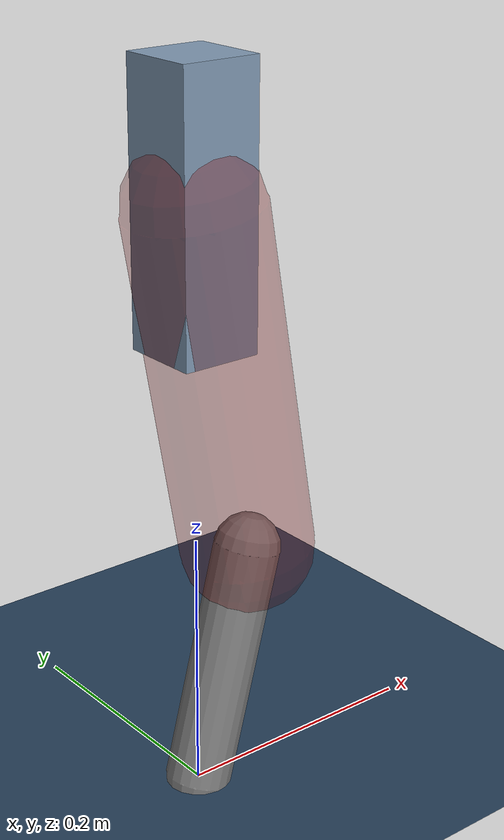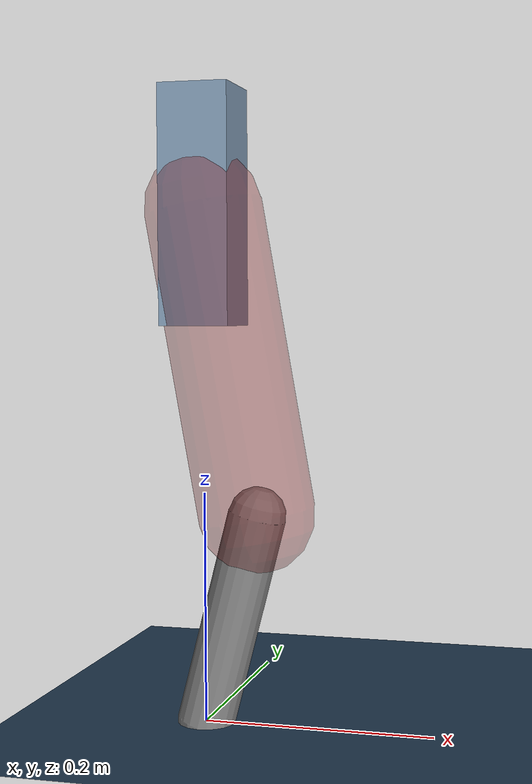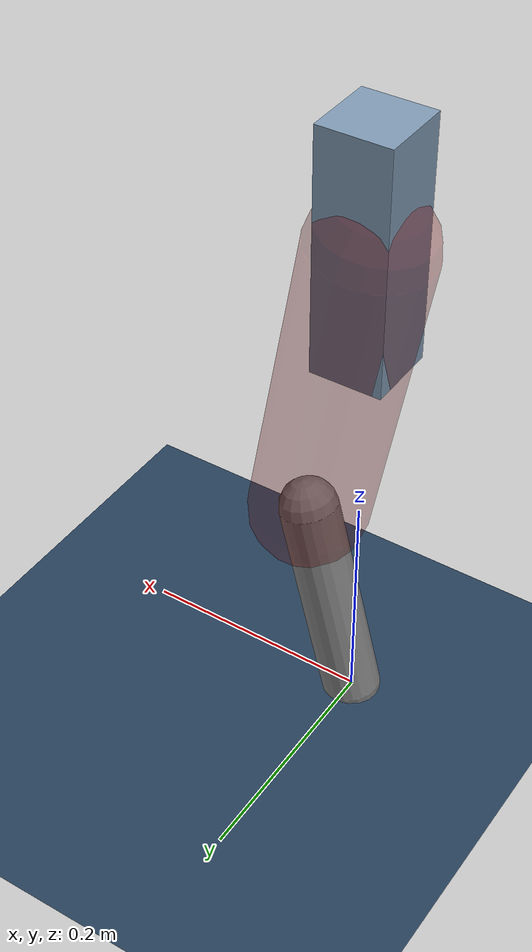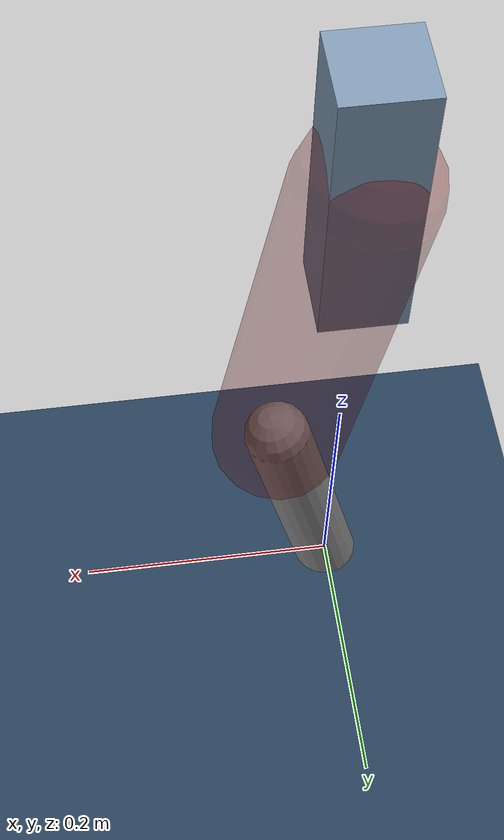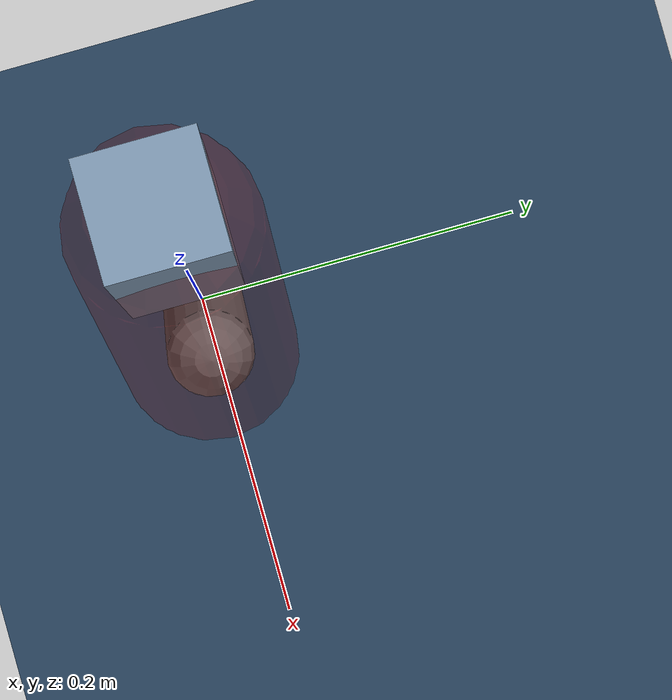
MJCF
<mujoco model="Hopper2D">
	<compiler inertiafromgeom="true" angle="radian" />
	<option timestep="0.001" integrator="implicit" cone="elliptic" solver="Newton" tolerance="1e-10" />

	<default>
		<geom contype="1" conaffinity="1" condim="3" friction="2 0.005 0.0001" solref="0.005 1" />
		<joint limited="true" damping="0.1" />
	</default>

	<asset>
		<texture name="skybox" type="skybox" builtin="gradient" rgb1=".4 .6 .8" rgb2="0 0 0" width="800" height="800" />
		<texture name="grid" type="2d" builtin="checker" rgb1=".1 .2 .3" rgb2=".2 .3 .4" width="300" height="300" mark="edge" markrgb=".2 .3 .4" />
		<material name="ground" texture="grid" texrepeat="1 1" texuniform="true" reflectance="0.1" />
		<material name="leg" rgba="0.5 0.6 0.7 1" />
	</asset>

	<worldbody>

		<geom name="floor" type="plane" size="5 5 0.25" material="ground" />

		<light directional="false" diffuse="0.8 0.8 0.8" specular="0.3 0.3 0.3" pos="0 0 2" dir="0 0 -1" />
		<light mode="targetbodycom" target="base" directional="false" diffuse="0.8 0.8 0.8" specular="0.3 0.3 0.3" pos="0 0 2" dir="0 0 -1" />

		<camera name="fixed" pos="0 -2 1" xyaxes="1 0 0 0 0 1" />
		<camera name="tracking" mode="trackcom" pos="0 -3 1" />

		<body name="root" pos="0 0 0.4438329612816909">
			<joint name="slide_x" type="slide" axis="1 0 0" range="-100 100" />
			<joint name="slide_z" type="slide" axis="0 0 1" range="0 10" />

			<body name="base" pos="0 0 0">
				<geom name="torso" type="box" size="0.03 0.03 0.1" mass="2.446" material="leg" />

				<body name="link1" pos="0 0 0" euler="0 1.394320624118969 0">
					<joint type="hinge" axis="0 -1 0" pos="0 0 0" name="hinge1" limited="true" range="-3.14 3.14" stiffness="0" damping="0.1" />
					<geom name="thigh" type="capsule" fromto="0 0 0 0.2656857680512569 0 0" size="0.05" rgba="0.5 0 0 0.3" mass="0.8972829969332679" />

					<body name="link2" pos="0.2656857680512569 0 0" euler="0 0.4270008562793322 0">
						<joint type="hinge" axis="0 -1 0" pos="0 0 0" name="hinge2" limited="true" range="-3.14 3.14" stiffness="0" damping="0.1" />
						<geom name="shank" type="capsule" fromto="0 0 0 0.18814719323043408 0 0" size="0.025" mass="0.3908324739073907" />

					</body>
				</body>
			</body>
		</body>
	</worldbody>

	<actuator>
		<motor name="torque1" joint="hinge1" ctrlrange="-95.69336558011493 95.69336558011493" ctrllimited="true" gear="1" />
		<motor name="torque2" joint="hinge2" ctrlrange="-98.60458482428113 98.60458482428113" ctrllimited="true" gear="1" />
	</actuator>
</mujoco>
